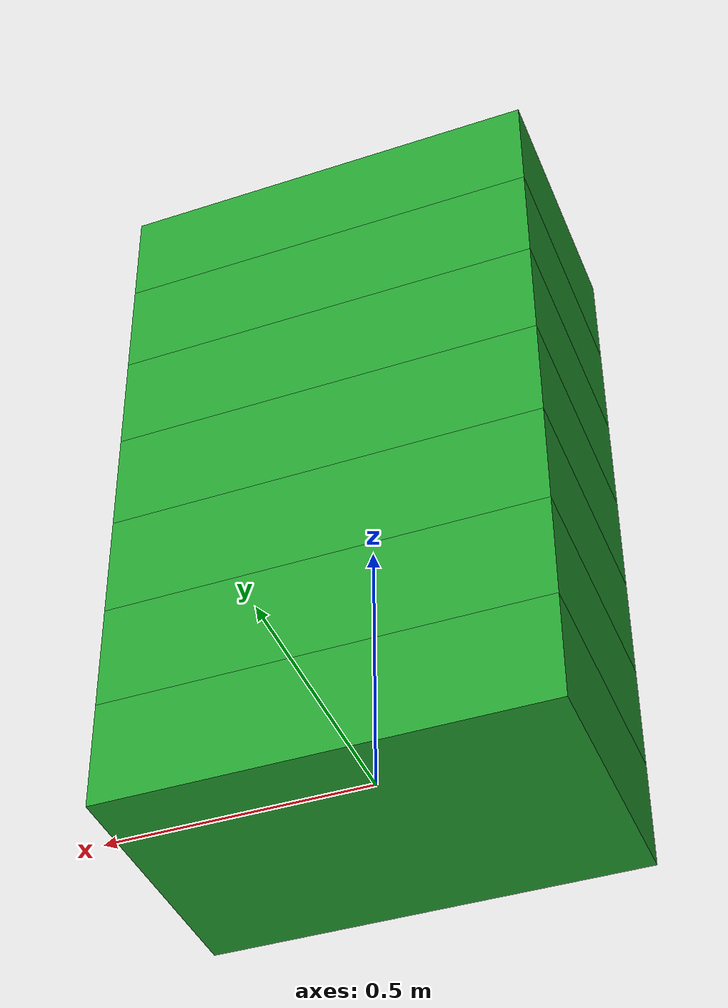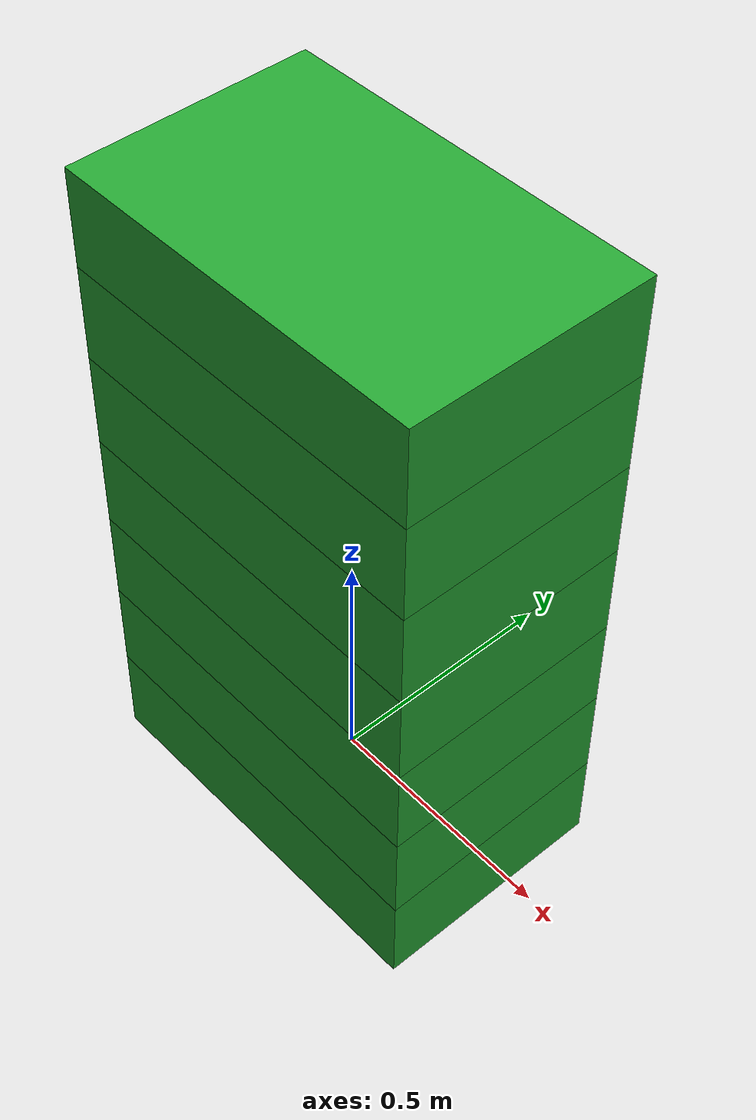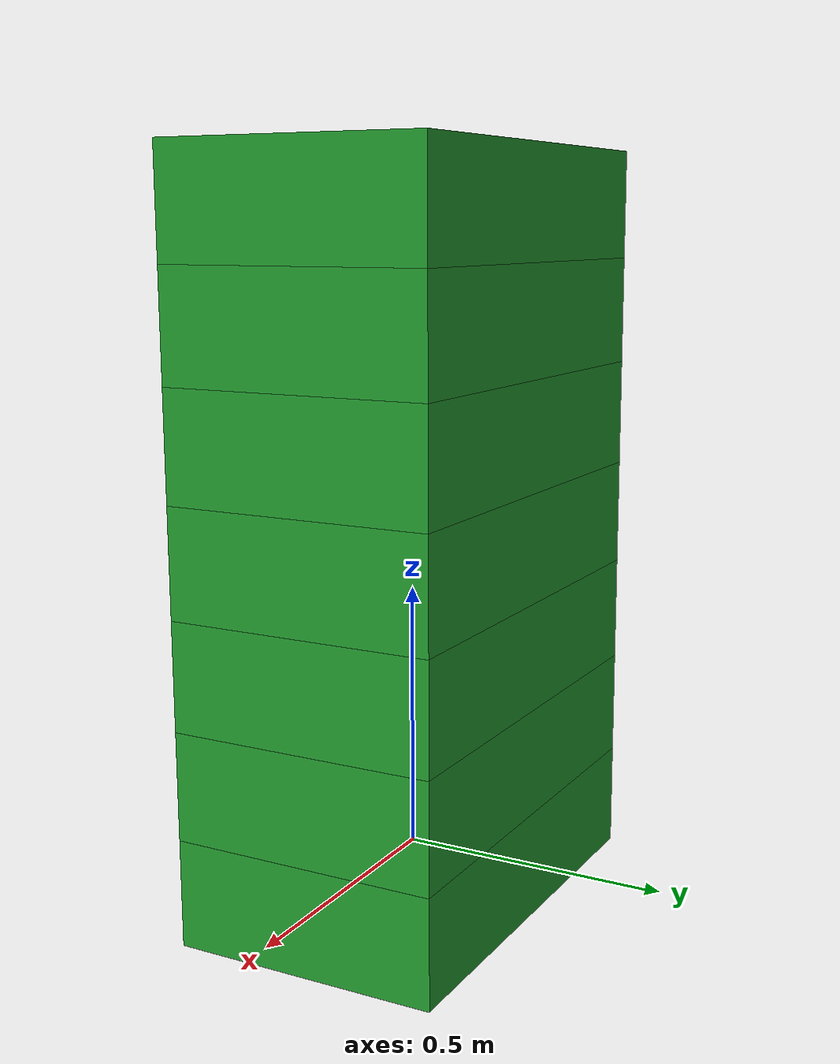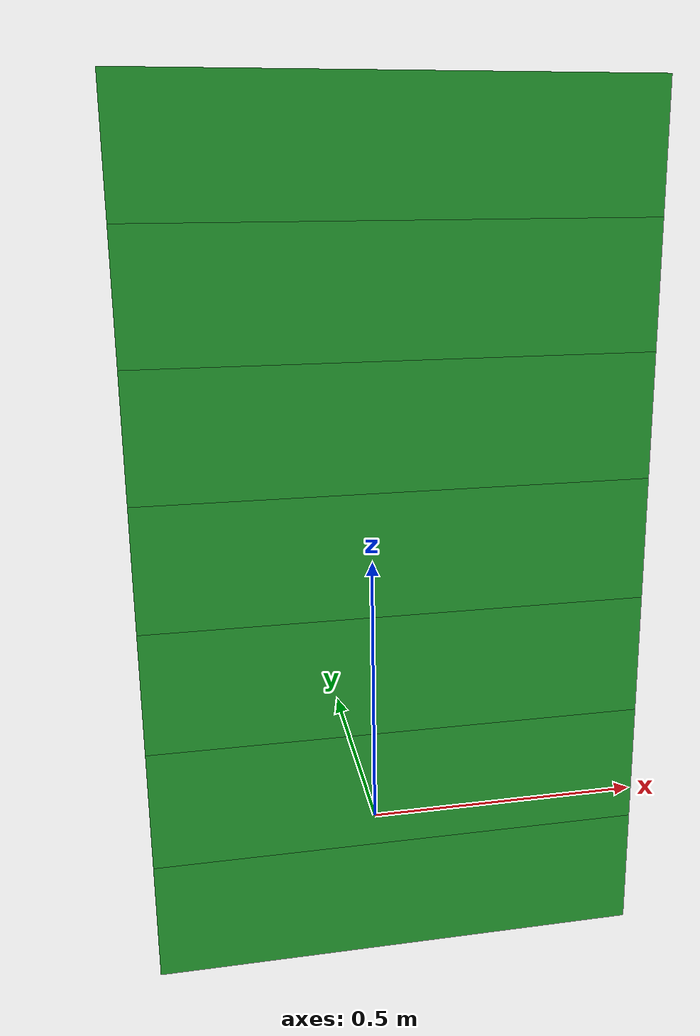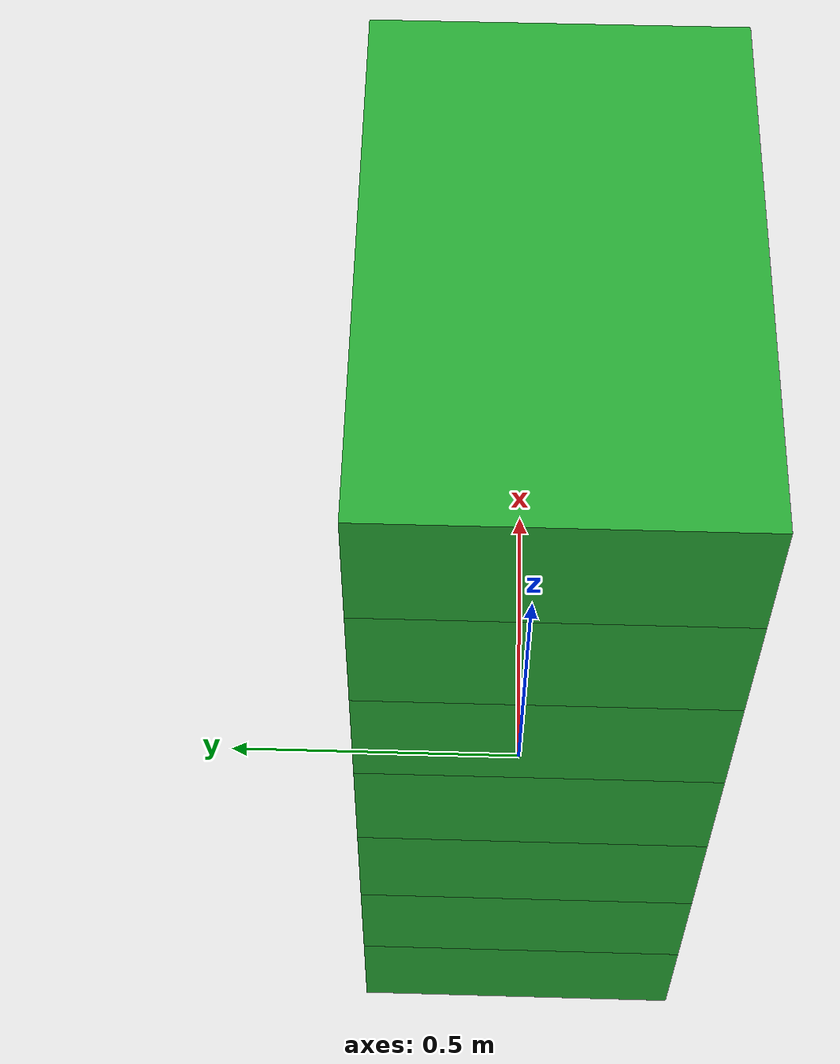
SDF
<?xml version="1.0" encoding="UTF-8"?>
<sdf version='1.4'>
    <model name="baggage_D_x7">
        <model name="baggage_D_0">
            <static>true</static>
            <link name="link">
                <collision name="collision">
                    <geometry>
                    <box>
                        <size>0.8 0.5 0.2</size>
                    </box>
                    </geometry>
                </collision>
                <visual name="visual">
                    <geometry>
                    <box>
                        <size>0.8 0.5 0.2</size>
                    </box>
                    </geometry>
                    <material>
                    <script>
                        <uri>file://media/materials/scripts/gazebo.material</uri>
                        <name>Gazebo/Green</name>
                    </script>
                    </material>
                </visual>
            </link>
            <pose frame=''>0 0 0 0 0 0</pose>
        </model>
        <model name="baggage_D_1">
            <static>true</static>
            <link name="link">
                <collision name="collision">
                    <geometry>
                    <box>
                        <size>0.8 0.5 0.2</size>
                    </box>
                    </geometry>
                </collision>
                <visual name="visual">
                    <geometry>
                    <box>
                        <size>0.8 0.5 0.2</size>
                    </box>
                    </geometry>
                    <material>
                    <script>
                        <uri>file://media/materials/scripts/gazebo.material</uri>
                        <name>Gazebo/Green</name>
                    </script>
                    </material>
                </visual>
            </link>
            <pose frame=''>0 0 0.2 0 0 0</pose>
        </model>
        <model name="baggage_D_2">
            <static>true</static>
            <link name="link">
                <collision name="collision">
                    <geometry>
                    <box>
                        <size>0.8 0.5 0.2</size>
                    </box>
                    </geometry>
                </collision>
                <visual name="visual">
                    <geometry>
                    <box>
                        <size>0.8 0.5 0.2</size>
                    </box>
                    </geometry>
                    <material>
                    <script>
                        <uri>file://media/materials/scripts/gazebo.material</uri>
                        <name>Gazebo/Green</name>
                    </script>
                    </material>
                </visual>
            </link>
            <pose frame=''>0 0 0.4 0 0 0</pose>
        </model>
        <model name="baggage_D_3">
            <static>true</static>
            <link name="link">
                <collision name="collision">
                    <geometry>
                    <box>
                        <size>0.8 0.5 0.2</size>
                    </box>
                    </geometry>
                </collision>
                <visual name="visual">
                    <geometry>
                    <box>
                        <size>0.8 0.5 0.2</size>
                    </box>
                    </geometry>
                    <material>
                    <script>
                        <uri>file://media/materials/scripts/gazebo.material</uri>
                        <name>Gazebo/Green</name>
                    </script>
                    </material>
                </visual>
            </link>
            <pose frame=''>0 0 0.6 0 0 0</pose>
        </model>
        <model name="baggage_D_4">
            <static>true</static>
            <link name="link">
                <collision name="collision">
                    <geometry>
                    <box>
                        <size>0.8 0.5 0.2</size>
                    </box>
                    </geometry>
                </collision>
                <visual name="visual">
                    <geometry>
                    <box>
                        <size>0.8 0.5 0.2</size>
                    </box>
                    </geometry>
                    <material>
                    <script>
                        <uri>file://media/materials/scripts/gazebo.material</uri>
                        <name>Gazebo/Green</name>
                    </script>
                    </material>
                </visual>
            </link>
            <pose frame=''>0 0 0.8 0 0 0</pose>
        </model>
        <model name="baggage_D_5">
            <static>true</static>
            <link name="link">
                <collision name="collision">
                    <geometry>
                    <box>
                        <size>0.8 0.5 0.2</size>
                    </box>
                    </geometry>
                </collision>
                <visual name="visual">
                    <geometry>
                    <box>
                        <size>0.8 0.5 0.2</size>
                    </box>
                    </geometry>
                    <material>
                    <script>
                        <uri>file://media/materials/scripts/gazebo.material</uri>
                        <name>Gazebo/Green</name>
                    </script>
                    </material>
                </visual>
            </link>
            <pose frame=''>0 0 1.0 0 0 0</pose>
        </model>
        <model name="baggage_D_6">
            <static>true</static>
            <link name="link">
                <collision name="collision">
                    <geometry>
                    <box>
                        <size>0.8 0.5 0.2</size>
                    </box>
                    </geometry>
                </collision>
                <visual name="visual">
                    <geometry>
                    <box>
                        <size>0.8 0.5 0.2</size>
                    </box>
                    </geometry>
                    <material>
                    <script>
                        <uri>file://media/materials/scripts/gazebo.material</uri>
                        <name>Gazebo/Green</name>
                    </script>
                    </material>
                </visual>
            </link>
            <pose frame=''>0 0 1.2 0 0 0</pose>
        </model>
    </model>
</sdf>
